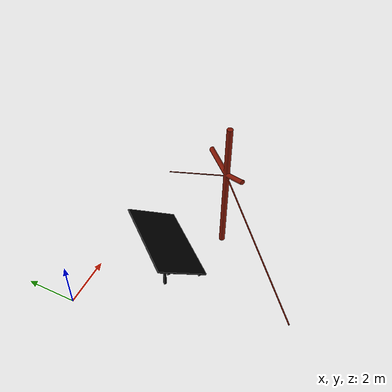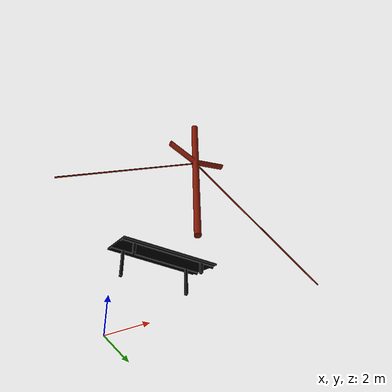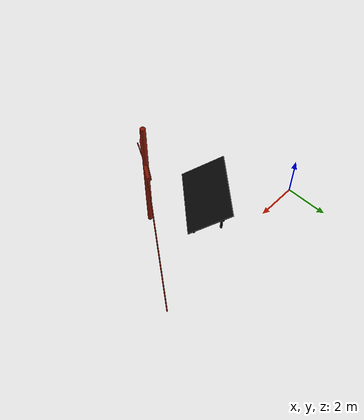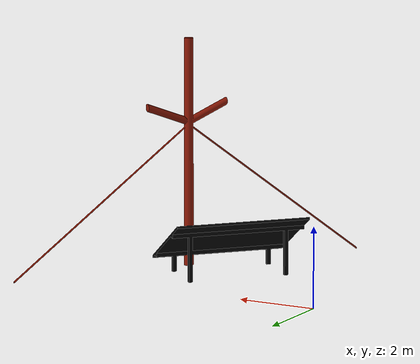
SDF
<?xml version="1.0" ?>
<sdf version="1.6">
  <model name="single_tower">
    <static>true</static>
    <link name="link">
      <collision name="collision">
        <geometry>
          <mesh>
            <scale>1.0 1.0 1.0</scale>
            <uri>model://single_tower/meshes/single_tower.dae</uri>
          </mesh>
        </geometry>
      </collision>
      <visual name="visual">
        <geometry>
          <mesh>
            <scale>1.0 1.0 1.0</scale>
            <uri>model://single_tower/meshes/single_tower.dae</uri>
          </mesh>
        </geometry>
      </visual>
    </link>
  </model>
</sdf>
